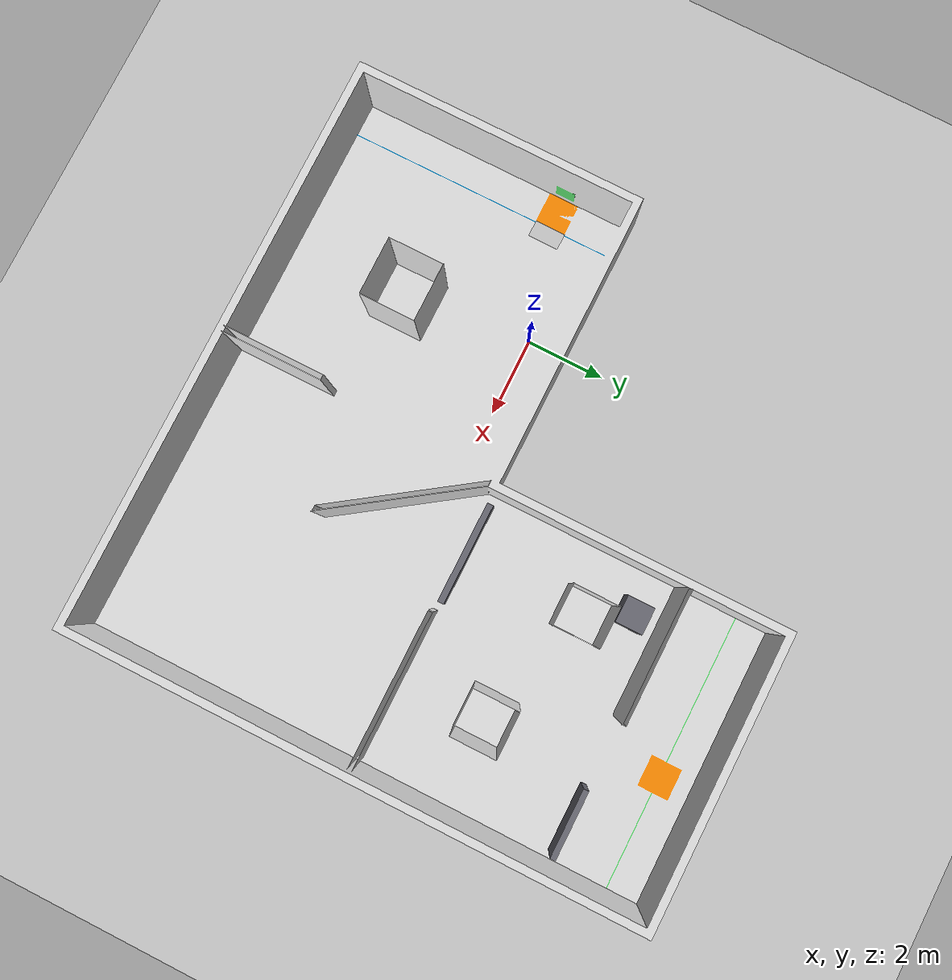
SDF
<?xml version="1.0" ?>
<sdf version="1.6">
  <world name="competition_world">
    <gravity>0 0 -9.8</gravity>

    <plugin filename="gz-sim-physics-system" name="gz::sim::systems::Physics" />
    <plugin filename="gz-sim-user-commands-system" name="gz::sim::systems::UserCommands" />
    <plugin filename="gz-sim-scene-broadcaster-system" name="gz::sim::systems::SceneBroadcaster" />
    <plugin filename="gz-sim-contact-system" name="gz::sim::systems::Contact" />

    <light name="sun" type="directional">
      <cast_shadows>true</cast_shadows>
      <pose>0 0 10 0 0 0</pose>
      <diffuse>0.8 0.8 0.8 1</diffuse>
      <specular>0.2 0.2 0.2 1</specular>
      <attenuation>
        <range>1000</range>
        <constant>0.9</constant>
        <linear>0.01</linear>
        <quadratic>0.001</quadratic>
      </attenuation>
      <direction>-0.5 0.1 -0.9</direction>
    </light>

    <model name="ground_plane">
      <static>true</static>
      <link name="link">
        <collision name="collision">
          <geometry>
            <plane>
              <normal>0 0 1</normal>
              <size>30 30</size>
            </plane>
          </geometry>
        </collision>
        <visual name="visual">
          <geometry>
            <plane>
              <normal>0 0 1</normal>
              <size>30 30</size>
            </plane>
          </geometry>
          <material>
            <ambient>0.8 0.8 0.8 1</ambient>
            <diffuse>0.8 0.8 0.8 1</diffuse>
          </material>
        </visual>
      </link>
    </model>

    <plugin filename="gz-sim-sensors-system" name="gz::sim::systems::Sensors">
      <render_engine>ogre2</render_engine>
    </plugin>

    <include>
      <uri>model://competition_map_dae</uri>
      <pose>0 0 0 0 0 0</pose>
    </include>
    <!-- S3: extends the fixed partition at y=5.95 to the right wall; the 3.60 m upper->middle gap becomes 1.85 m -->
    <model name="s3_gate_extension">
      <static>true</static><pose>9.875 5.95 0.45 0 0 0</pose>
      <link name="link">
        <collision name="collision">
          <geometry><box><size>1.75 0.14 0.9</size></box></geometry>
        </collision>
        <visual name="visual">
          <geometry><box><size>1.75 0.14 0.9</size></box></geometry>
          <material><ambient>0.35 0.35 0.38 1</ambient><diffuse>0.42 0.42 0.46 1</diffuse></material>
        </visual>
      </link>
    </model>
    <!-- S3: free-standing 0.70 m pillar where the map shows open floor -->
    <model name="s3_new_pillar">
      <static>true</static><pose>4.9 5.2 0.45 0 0 0</pose>
      <link name="link">
        <collision name="collision">
          <geometry><box><size>0.7 0.7 0.9</size></box></geometry>
        </collision>
        <visual name="visual">
          <geometry><box><size>0.7 0.7 0.9</size></box></geometry>
          <material><ambient>0.35 0.35 0.38 1</ambient><diffuse>0.42 0.42 0.46 1</diffuse></material>
        </visual>
      </link>
    </model>
    <!-- S3: seals the only passage between the middle room and the lower half of the arena (2.4 m wide gap at y=1.0) -->
    <model name="s3_corridor_seal">
      <static>true</static><pose>5.4 1.0 0.45 0 0 0</pose>
      <link name="link">
        <collision name="collision">
          <geometry><box><size>2.6 0.16 0.9</size></box></geometry>
        </collision>
        <visual name="visual">
          <geometry><box><size>2.6 0.16 0.9</size></box></geometry>
          <material><ambient>0.35 0.35 0.38 1</ambient><diffuse>0.42 0.42 0.46 1</diffuse></material>
        </visual>
      </link>
    </model>
</world>
</sdf>

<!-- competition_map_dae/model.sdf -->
<sdf version="1.6">
  <model name="competition_map_dae">
    <static>true</static>
    <link name="map_link">
      <!-- The SW model contains a 0.20 m floor slab. Sink it so the slab's
           top surface is z=0 and sensors are above, rather than inside, it. -->
      <pose>0 0 -0.2 0 0 0</pose>
      <visual name="map_visual">
        <geometry>
          <mesh>
            <!-- Rules-correct visual: the 0.8 m finish pad touches the marker wall. -->
            <uri>model://competition_map_dae/meshes/competition_map_color_rules.dae</uri>
            <scale>1 1 1</scale>
          </mesh>
        </geometry>
      </visual>
      <collision name="map_collision">
        <geometry>
          <mesh>
            <uri>model://competition_map_dae/meshes/competition_map_collision.obj</uri>
            <scale>1 1 1</scale>
          </mesh>
        </geometry>
      </collision>
    </link>
  </model>
</sdf>
